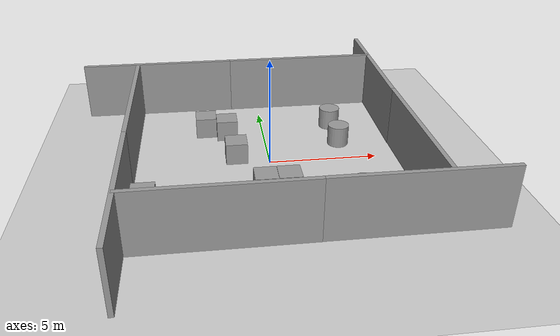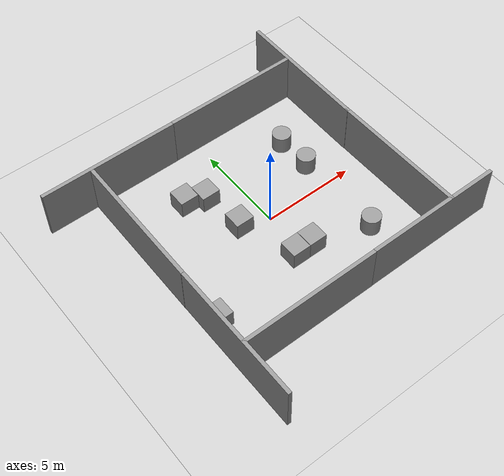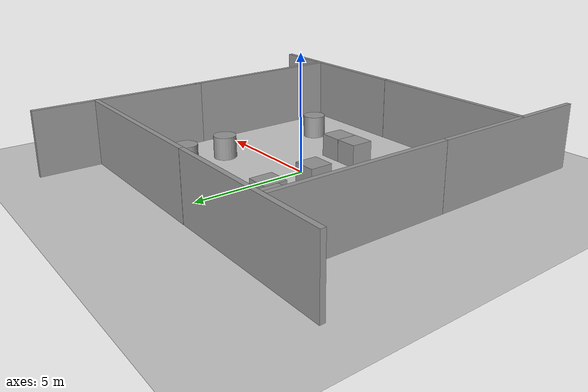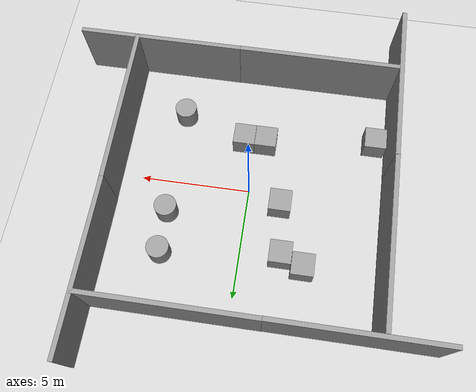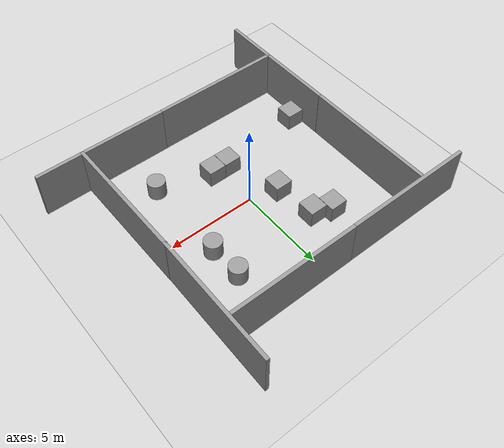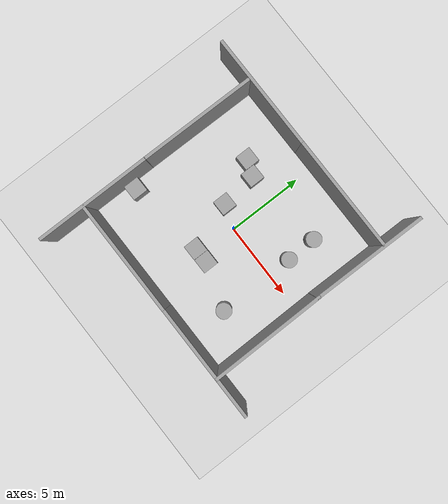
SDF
<sdf version="1.6">
 <world name="default">
  <light name="sun" type="directional">
   <pose>0 0 10 0 -0 0</pose>
   <diffuse>0.8 0.8 0.8 1</diffuse>
   <specular>0.2 0.2 0.2 1</specular>
   <attenuation>
    <range>1000</range>
    <constant>0.9</constant>
    <linear>0.01</linear>
    <quadratic>0.001</quadratic>
   </attenuation>
   <direction>-0.5 0.1 -0.9</direction>
  </light>
  <model name="ground_plane">
   <static>1</static>
   <link name="link">
    <collision name="collision">
     <geometry><plane><normal>0 0 1</normal><size>100 100</size></plane></geometry>
     <surface><friction><ode><mu>100</mu><mu2>50</mu2></ode></friction></surface>
    </collision>
    <visual name="visual">
     <cast_shadows>0</cast_shadows>
     <geometry><plane><normal>0 0 1</normal><size>100 100</size></plane></geometry>
     <material>
      <script><uri>file://media/materials/scripts/gazebo.material</uri><name>Gazebo/Grey</name></script>
     </material>
    </visual>
    <velocity_decay><linear>0</linear><angular>0</angular></velocity_decay>
   </link>
  </model>
  <physics name="default_physics" default="0" type="ode">
   <max_step_size>0.01</max_step_size>
   <real_time_factor>10</real_time_factor>
   <real_time_update_rate>1000</real_time_update_rate>
  </physics>
  <scene><ambient>0.4 0.4 0.4 1</ambient><background>0.7 0.7 0.7 1</background><shadows>1</shadows></scene>
  <spherical_coordinates>
   <surface_model>EARTH_WGS84</surface_model>
   <latitude_deg>0</latitude_deg>
   <longitude_deg>0</longitude_deg>
   <elevation>0</elevation>
   <heading_deg>0</heading_deg>
  </spherical_coordinates>
  <model name="grey_wall">
   <static>1</static>
   <link name="link">
    <pose>0 0 1.4 0 -0 0</pose>
    <collision name="collision"><geometry><box><size>7.5 0.2 2.8</size></box></geometry></collision>
    <visual name="visual">
     <cast_shadows>0</cast_shadows>
     <geometry><box><size>7.5 0.2 2.8</size></box></geometry>
     <material>
      <script>
       <uri>model://grey_wall/materials/scripts</uri>
       <uri>model://grey_wall/materials/textures</uri>
       <name>vrc/grey_wall</name>
      </script>
     </material>
    </visual>
    <velocity_decay><linear>0</linear><angular>0</angular></velocity_decay>
   </link>
   <pose>-5.13432 6.07996 0 0 -0 0</pose>
  </model>
  <model name="grey_wall_0">
   <static>1</static>
   <link name="link">
    <pose>0 0 1.4 0 -0 0</pose>
    <collision name="collision"><geometry><box><size>7.5 0.2 2.8</size></box></geometry></collision>
    <visual name="visual">
     <cast_shadows>0</cast_shadows>
     <geometry><box><size>7.5 0.2 2.8</size></box></geometry>
     <material>
      <script>
       <uri>model://grey_wall/materials/scripts</uri>
       <uri>model://grey_wall/materials/textures</uri>
       <name>vrc/grey_wall</name>
      </script>
     </material>
    </visual>
    <velocity_decay><linear>0</linear><angular>0</angular></velocity_decay>
   </link>
   <pose>2.34836 6.08753 0 0 -0 0</pose>
  </model>
  <model name="grey_wall_3">
   <static>1</static>
   <link name="link">
    <pose>0 0 1.4 0 -0 0</pose>
    <collision name="collision"><geometry><box><size>7.5 0.2 2.8</size></box></geometry></collision>
    <visual name="visual">
     <cast_shadows>0</cast_shadows>
     <geometry><box><size>7.5 0.2 2.8</size></box></geometry>
     <material>
      <script>
       <uri>model://grey_wall/materials/scripts</uri>
       <uri>model://grey_wall/materials/textures</uri>
       <name>vrc/grey_wall</name>
      </script>
     </material>
    </visual>
    <velocity_decay><linear>0</linear><angular>0</angular></velocity_decay>
   </link>
   <pose>-2.49998 -5.96009 0 0 -0 0</pose>
  </model>
  <model name="grey_wall_4">
   <static>1</static>
   <link name="link">
    <pose>0 0 1.4 0 -0 0</pose>
    <collision name="collision"><geometry><box><size>7.5 0.2 2.8</size></box></geometry></collision>
    <visual name="visual">
     <cast_shadows>0</cast_shadows>
     <geometry><box><size>7.5 0.2 2.8</size></box></geometry>
     <material>
      <script>
       <uri>model://grey_wall/materials/scripts</uri>
       <uri>model://grey_wall/materials/textures</uri>
       <name>vrc/grey_wall</name>
      </script>
     </material>
    </visual>
    <velocity_decay><linear>0</linear><angular>0</angular></velocity_decay>
   </link>
   <pose>4.99925 -5.95107 0 0 -0 0</pose>
  </model>
  <model name="grey_wall_5">
   <static>1</static>
   <link name="link">
    <pose>0 0 1.4 0 -0 0</pose>
    <collision name="collision"><geometry><box><size>7.5 0.2 2.8</size></box></geometry></collision>
    <visual name="visual">
     <cast_shadows>0</cast_shadows>
     <geometry><box><size>7.5 0.2 2.8</size></box></geometry>
     <material>
      <script>
       <uri>model://grey_wall/materials/scripts</uri>
       <uri>model://grey_wall/materials/textures</uri>
       <name>vrc/grey_wall</name>
      </script>
     </material>
    </visual>
    <velocity_decay><linear>0</linear><angular>0</angular></velocity_decay>
   </link>
   <pose>6.07625 4.9821 0 0 0 -1.58058</pose>
  </model>
  <model name="grey_wall_6">
   <static>1</static>
   <link name="link">
    <pose>0 0 1.4 0 -0 0</pose>
    <collision name="collision"><geometry><box><size>7.5 0.2 2.8</size></box></geometry></collision>
    <visual name="visual">
     <cast_shadows>0</cast_shadows>
     <geometry><box><size>7.5 0.2 2.8</size></box></geometry>
     <material>
      <script>
       <uri>model://grey_wall/materials/scripts</uri>
       <uri>model://grey_wall/materials/textures</uri>
       <name>vrc/grey_wall</name>
      </script>
     </material>
    </visual>
    <velocity_decay><linear>0</linear><angular>0</angular></velocity_decay>
   </link>
   <pose>6.06959 -2.28477 0 0 0 -1.566</pose>
  </model>
  <model name="grey_wall_8">
   <static>1</static>
   <link name="link">
    <pose>0 0 1.4 0 -0 0</pose>
    <collision name="collision"><geometry><box><size>7.5 0.2 2.8</size></box></geometry></collision>
    <visual name="visual">
     <cast_shadows>0</cast_shadows>
     <geometry><box><size>7.5 0.2 2.8</size></box></geometry>
     <material>
      <script>
       <uri>model://grey_wall/materials/scripts</uri>
       <uri>model://grey_wall/materials/textures</uri>
       <name>vrc/grey_wall</name>
      </script>
     </material>
    </visual>
    <velocity_decay><linear>0</linear><angular>0</angular></velocity_decay>
   </link>
   <pose>-6.17497 2.22209 0 0 0 -1.57839</pose>
  </model>
  <model name="grey_wall_9">
   <static>1</static>
   <link name="link">
    <pose>0 0 1.4 0 -0 0</pose>
    <collision name="collision"><geometry><box><size>7.5 0.2 2.8</size></box></geometry></collision>
    <visual name="visual">
     <cast_shadows>0</cast_shadows>
     <geometry><box><size>7.5 0.2 2.8</size></box></geometry>
     <material>
      <script>
       <uri>model://grey_wall/materials/scripts</uri>
       <uri>model://grey_wall/materials/textures</uri>
       <name>vrc/grey_wall</name>
      </script>
     </material>
    </visual>
    <velocity_decay><linear>0</linear><angular>0</angular></velocity_decay>
   </link>
   <pose>-6.20985 -5.2862 0 0 0 -1.57362</pose>
  </model>
  <gravity>0 0 -9.8</gravity>
  <magnetic_field>6e-06 2.3e-05 -4.2e-05</magnetic_field>
  <atmosphere type="adiabatic"/>
  <model name="unit_box">
   <pose>-2.81215 3.30028 0.49967 0.00066 -0 0</pose>
   <link name="link">
    <inertial>
     <mass>1</mass>
     <inertia>
      <ixx>0.166667</ixx>
      <ixy>0</ixy>
      <ixz>0</ixz>
      <iyy>0.166667</iyy>
      <iyz>0</iyz>
      <izz>0.166667</izz>
     </inertia>
    </inertial>
    <collision name="collision"><geometry><box><size>1 1 1</size></box></geometry></collision>
    <visual name="visual">
     <geometry><box><size>1 1 1</size></box></geometry>
     <material>
      <script><name>Gazebo/Grey</name><uri>file://media/materials/scripts/gazebo.material</uri></script>
     </material>
    </visual>
   </link>
  </model>
  <model name="unit_box_0">
   <pose>-1.80216 2.88999 0.49907 -0.0001 0 0</pose>
   <link name="link">
    <inertial>
     <mass>1</mass>
     <inertia>
      <ixx>0.166667</ixx>
      <ixy>0</ixy>
      <ixz>0</ixz>
      <iyy>0.166667</iyy>
      <iyz>0</iyz>
      <izz>0.166667</izz>
     </inertia>
    </inertial>
    <collision name="collision"><geometry><box><size>1 1 1</size></box></geometry></collision>
    <visual name="visual">
     <geometry><box><size>1 1 1</size></box></geometry>
     <material>
      <script><name>Gazebo/Grey</name><uri>file://media/materials/scripts/gazebo.material</uri></script>
     </material>
    </visual>
   </link>
  </model>
  <model name="unit_cylinder">
   <pose>3.51085 -3.46318 0.499789 0.000422 0.000422 -6e-06</pose>
   <link name="link">
    <inertial>
     <mass>1</mass>
     <inertia><ixx>0.145833</ixx><ixy>0</ixy><ixz>0</ixz><iyy>0.145833</iyy><iyz>0</iyz><izz>0.125</izz></inertia>
    </inertial>
    <collision name="collision">
     <geometry><cylinder><radius>0.5</radius><length>1</length></cylinder></geometry>
    </collision>
    <visual name="visual">
     <geometry><cylinder><radius>0.5</radius><length>1</length></cylinder></geometry>
     <material>
      <script><name>Gazebo/Grey</name><uri>file://media/materials/scripts/gazebo.material</uri></script>
     </material>
    </visual>
   </link>
  </model>
  <model name="unit_box_1">
   <pose>0.536568 -2.49534 0.49907 -0.0001 0 0</pose>
   <link name="link">
    <inertial>
     <mass>1</mass>
     <inertia>
      <ixx>0.166667</ixx>
      <ixy>0</ixy>
      <ixz>0</ixz>
      <iyy>0.166667</iyy>
      <iyz>0</iyz>
      <izz>0.166667</izz>
     </inertia>
    </inertial>
    <collision name="collision"><geometry><box><size>1 1 1</size></box></geometry></collision>
    <visual name="visual">
     <geometry><box><size>1 1 1</size></box></geometry>
     <material>
      <script><name>Gazebo/Grey</name><uri>file://media/materials/scripts/gazebo.material</uri></script>
     </material>
    </visual>
   </link>
  </model>
  <model name="unit_box_2">
   <pose>-0.469171 -2.50016 0.49967 0.00066 -0 0</pose>
   <link name="link">
    <inertial>
     <mass>1</mass>
     <inertia>
      <ixx>0.166667</ixx>
      <ixy>0</ixy>
      <ixz>0</ixz>
      <iyy>0.166667</iyy>
      <iyz>0</iyz>
      <izz>0.166667</izz>
     </inertia>
    </inertial>
    <collision name="collision"><geometry><box><size>1 1 1</size></box></geometry></collision>
    <visual name="visual">
     <geometry><box><size>1 1 1</size></box></geometry>
     <material>
      <script><name>Gazebo/Grey</name><uri>file://media/materials/scripts/gazebo.material</uri></script>
     </material>
    </visual>
   </link>
  </model>
  <model name="unit_box_1_clone">
   <pose>-1.5048 0.536154 0.49907 -0.0001 0 0</pose>
   <link name="link">
    <inertial>
     <mass>1</mass>
     <inertia>
      <ixx>0.166667</ixx>
      <ixy>0</ixy>
      <ixz>0</ixz>
      <iyy>0.166667</iyy>
      <iyz>0</iyz>
      <izz>0.166667</izz>
     </inertia>
    </inertial>
    <collision name="collision"><geometry><box><size>1 1 1</size></box></geometry></collision>
    <visual name="visual">
     <geometry><box><size>1 1 1</size></box></geometry>
     <material>
      <script><name>Gazebo/Grey</name><uri>file://media/materials/scripts/gazebo.material</uri></script>
     </material>
    </visual>
   </link>
  </model>
  <model name="unit_cylinder_0">
   <pose>3.48684 3.42516 0.499789 0.000422 0.000422 -3e-06</pose>
   <link name="link">
    <inertial>
     <mass>1</mass>
     <inertia><ixx>0.145833</ixx><ixy>0</ixy><ixz>0</ixz><iyy>0.145833</iyy><iyz>0</iyz><izz>0.125</izz></inertia>
    </inertial>
    <collision name="collision">
     <geometry><cylinder><radius>0.5</radius><length>1</length></cylinder></geometry>
    </collision>
    <visual name="visual">
     <geometry><cylinder><radius>0.5</radius><length>1</length></cylinder></geometry>
     <material>
      <script><name>Gazebo/Grey</name><uri>file://media/materials/scripts/gazebo.material</uri></script>
     </material>
    </visual>
   </link>
  </model>
  <model name="unit_cylinder_1">
   <pose>3.53254 1.50277 0.499824 -0.000249 -0.000249 -2e-06</pose>
   <link name="link">
    <inertial>
     <mass>1</mass>
     <inertia><ixx>0.145833</ixx><ixy>0</ixy><ixz>0</ixz><iyy>0.145833</iyy><iyz>0</iyz><izz>0.125</izz></inertia>
    </inertial>
    <collision name="collision">
     <geometry><cylinder><radius>0.5</radius><length>1</length></cylinder></geometry>
    </collision>
    <visual name="visual">
     <geometry><cylinder><radius>0.5</radius><length>1</length></cylinder></geometry>
     <material>
      <script><name>Gazebo/Grey</name><uri>file://media/materials/scripts/gazebo.material</uri></script>
     </material>
    </visual>
   </link>
  </model>
  <model name="unit_box_3">
   <pose>-5.54326 -3.13148 0.499798 0.000404 1e-06 0</pose>
   <link name="link">
    <inertial>
     <mass>1</mass>
     <inertia>
      <ixx>0.166667</ixx>
      <ixy>0</ixy>
      <ixz>0</ixz>
      <iyy>0.166667</iyy>
      <iyz>0</iyz>
      <izz>0.166667</izz>
     </inertia>
    </inertial>
    <collision name="collision"><geometry><box><size>1 1 1</size></box></geometry></collision>
    <visual name="visual">
     <geometry><box><size>1 1 1</size></box></geometry>
     <material>
      <script><name>Gazebo/Grey</name><uri>file://media/materials/scripts/gazebo.material</uri></script>
     </material>
    </visual>
   </link>
  </model>
 </world>
</sdf>
